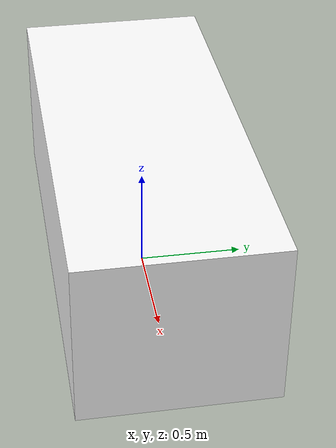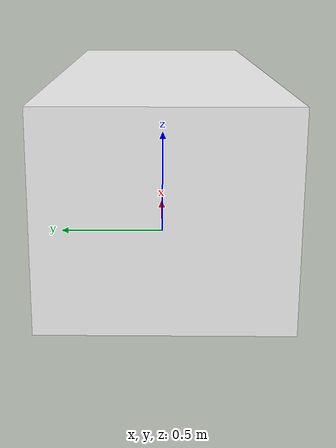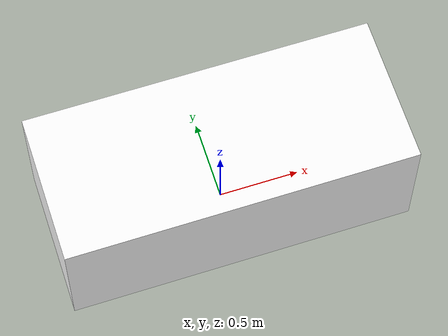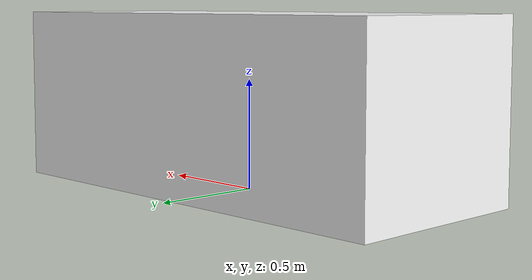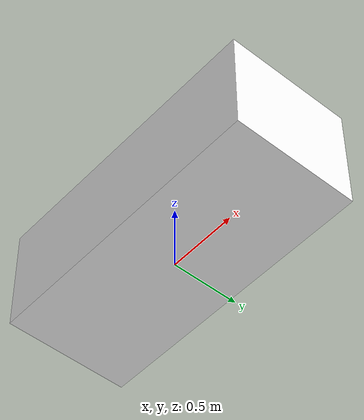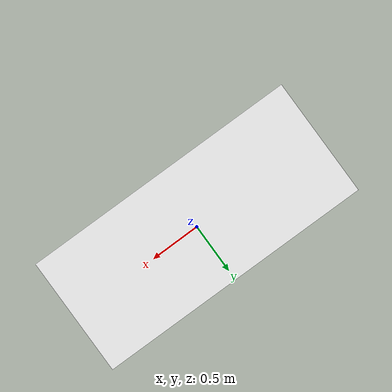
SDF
<?xml version="1.0"?>
<sdf version="1.7">
  <model name="pvc_desk">
    <static>true</static>
    <link name="desk_link">
      <pose>0 0 0.4 0 0 0</pose>
      <collision name="desk_collision">
        <geometry>
          <box>
            <size>2.1336 0.9144 0.8</size>
          </box>
        </geometry>
      </collision>
      <visual name="desk_visual">
        <geometry>
          <box>
            <size>2.1336 0.9144 0.8</size>
          </box>
        </geometry>
        <material>
          <ambient>0.9 0.9 0.9 1</ambient>
          <diffuse>1.0 1.0 1.0 1</diffuse>
          <specular>0.3 0.3 0.3 1</specular>
        </material>
      </visual>
      <inertial>
        <mass>20</mass>
        <inertia>
          <ixx>1.25</ixx>
          <ixy>0</ixy>
          <ixz>0</ixz>
          <iyy>7.68</iyy>
          <iyz>0</iyz>
          <izz>8.65</izz>
        </inertia>
      </inertial>
    </link>
  </model>
</sdf>
